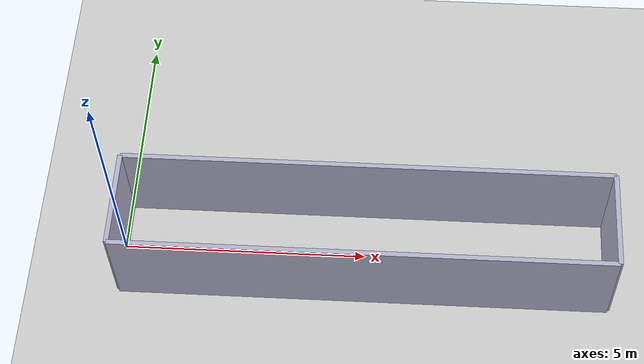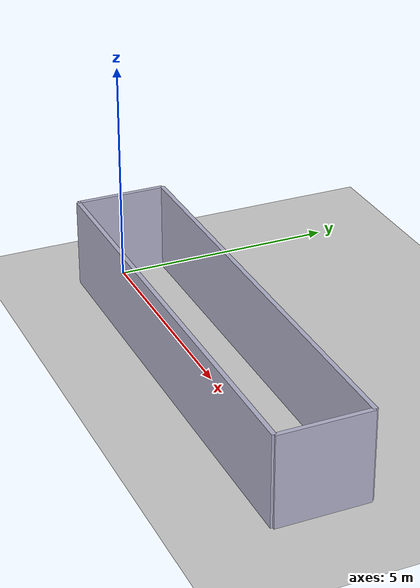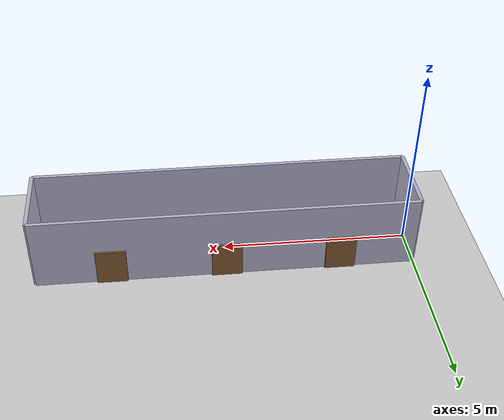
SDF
<?xml version="1.0"?>
<sdf version="1.8">
  <world name="hallway_with_doors">
    <physics name="1ms" type="ignored">
      <max_step_size>0.001</max_step_size>
      <real_time_factor>1.0</real_time_factor>
    </physics>
    <plugin filename="gz-sim-physics-system" name="gz::sim::systems::Physics"/>
    <plugin filename="gz-sim-user-commands-system" name="gz::sim::systems::UserCommands"/>
    <plugin filename="gz-sim-scene-broadcaster-system" name="gz::sim::systems::SceneBroadcaster"/>
    <plugin filename="gz-sim-sensors-system" name="gz::sim::systems::Sensors">
      <render_engine>ogre2</render_engine>
    </plugin>

    <light type="directional" name="sun">
      <cast_shadows>true</cast_shadows>
      <pose>0 0 10 0 0 0</pose>
      <diffuse>0.8 0.8 0.8 1</diffuse>
      <specular>0.2 0.2 0.2 1</specular>
      <direction>-0.5 0.1 -0.9</direction>
    </light>

    <!-- Ground plane -->
    <model name="ground_plane">
      <static>true</static>
      <link name="link">
        <collision name="collision">
          <geometry>
            <plane><normal>0 0 1</normal><size>20 20</size></plane>
          </geometry>
        </collision>
        <visual name="visual">
          <geometry>
            <plane><normal>0 0 1</normal><size>20 20</size></plane>
          </geometry>
          <material>
            <ambient>0.8 0.8 0.8 1</ambient>
            <diffuse>0.8 0.8 0.8 1</diffuse>
          </material>
        </visual>
      </link>
    </model>

    <!-- Hallway: 10m long, 2m wide -->
    <!-- Left wall -->
    <model name="left_wall">
      <static>true</static>
      <pose>5 1.0 1.0 0 0 0</pose>
      <link name="link">
        <collision name="collision">
          <geometry><box><size>10 0.1 2.0</size></box></geometry>
        </collision>
        <visual name="visual">
          <geometry><box><size>10 0.1 2.0</size></box></geometry>
          <material><ambient>0.7 0.7 0.8 1</ambient><diffuse>0.7 0.7 0.8 1</diffuse></material>
        </visual>
      </link>
    </model>

    <!-- Right wall -->
    <model name="right_wall">
      <static>true</static>
      <pose>5 -1.0 1.0 0 0 0</pose>
      <link name="link">
        <collision name="collision">
          <geometry><box><size>10 0.1 2.0</size></box></geometry>
        </collision>
        <visual name="visual">
          <geometry><box><size>10 0.1 2.0</size></box></geometry>
          <material><ambient>0.7 0.7 0.8 1</ambient><diffuse>0.7 0.7 0.8 1</diffuse></material>
        </visual>
      </link>
    </model>

    <!-- End walls -->
    <model name="start_wall">
      <static>true</static>
      <pose>0 0 1.0 0 0 0</pose>
      <link name="link">
        <collision name="collision">
          <geometry><box><size>0.1 2.0 2.0</size></box></geometry>
        </collision>
        <visual name="visual">
          <geometry><box><size>0.1 2.0 2.0</size></box></geometry>
          <material><ambient>0.7 0.7 0.8 1</ambient></material>
        </visual>
      </link>
    </model>

    <model name="end_wall">
      <static>true</static>
      <pose>10 0 1.0 0 0 0</pose>
      <link name="link">
        <collision name="collision">
          <geometry><box><size>0.1 2.0 2.0</size></box></geometry>
        </collision>
        <visual name="visual">
          <geometry><box><size>0.1 2.0 2.0</size></box></geometry>
          <material><ambient>0.7 0.7 0.8 1</ambient></material>
        </visual>
      </link>
    </model>

    <!-- Door frames at x=2.0, x=5.0, x=8.0 (left wall side) -->
    <!-- Door 1 at x=2.0 -->
    <model name="door_frame_1">
      <static>true</static>
      <pose>2.0 1.05 0.5 0 0 0</pose>
      <link name="link">
        <collision name="collision">
          <geometry><box><size>0.8 0.1 1.0</size></box></geometry>
        </collision>
        <visual name="visual">
          <geometry><box><size>0.8 0.1 1.0</size></box></geometry>
          <material><ambient>0.5 0.35 0.2 1</ambient><diffuse>0.5 0.35 0.2 1</diffuse></material>
        </visual>
      </link>
    </model>

    <!-- Door 2 at x=5.0 -->
    <model name="door_frame_2">
      <static>true</static>
      <pose>5.0 1.05 0.5 0 0 0</pose>
      <link name="link">
        <collision name="collision">
          <geometry><box><size>0.8 0.1 1.0</size></box></geometry>
        </collision>
        <visual name="visual">
          <geometry><box><size>0.8 0.1 1.0</size></box></geometry>
          <material><ambient>0.5 0.35 0.2 1</ambient><diffuse>0.5 0.35 0.2 1</diffuse></material>
        </visual>
      </link>
    </model>

    <!-- Door 3 at x=8.0 -->
    <model name="door_frame_3">
      <static>true</static>
      <pose>8.0 1.05 0.5 0 0 0</pose>
      <link name="link">
        <collision name="collision">
          <geometry><box><size>0.8 0.1 1.0</size></box></geometry>
        </collision>
        <visual name="visual">
          <geometry><box><size>0.8 0.1 1.0</size></box></geometry>
          <material><ambient>0.5 0.35 0.2 1</ambient><diffuse>0.5 0.35 0.2 1</diffuse></material>
        </visual>
      </link>
    </model>

  </world>
</sdf>
